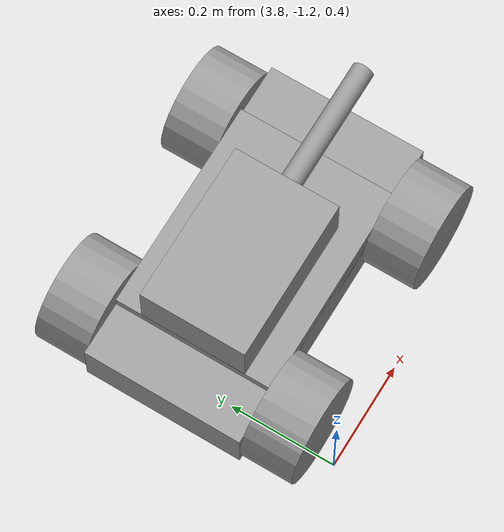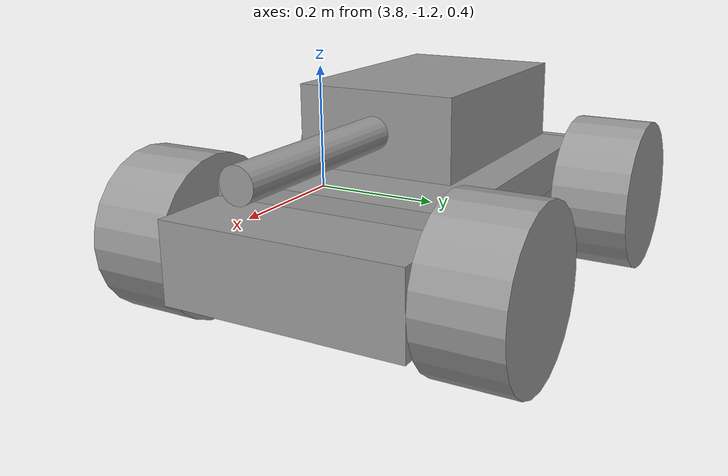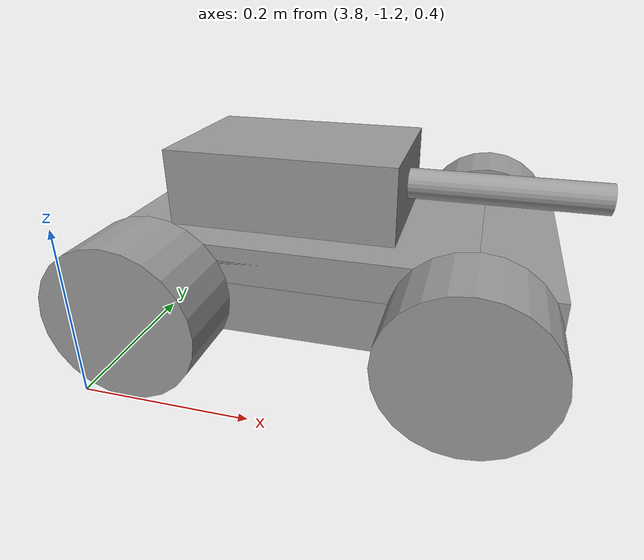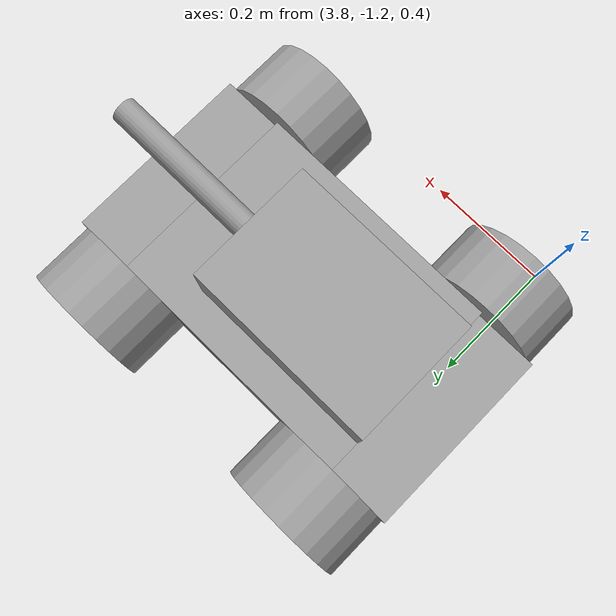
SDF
<?xml version='1.0'?>
<sdf version='1.6'>
  <model name='TankBot'>
    <link name='link_0'>
      <pose frame=''>4.02291 -0.912872 0.464375 0 -0 0</pose>
      <inertial>
        <mass>1</mass>
        <inertia>
          <ixx>0.166667</ixx>
          <ixy>0</ixy>
          <ixz>0</ixz>
          <iyy>0.166667</iyy>
          <iyz>0</iyz>
          <izz>0.166667</izz>
        </inertia>
        <pose frame=''>0 0 0 0 -0 0</pose>
      </inertial>
      <gravity>1</gravity>
      <self_collide>0</self_collide>
      <kinematic>0</kinematic>
      <visual name='visual'>
        <pose frame=''>0 0 0 0 -0 0</pose>
        <geometry>
          <box>
            <size>0.6 0.3 0.1</size>
          </box>
        </geometry>
        <material>
          <lighting>1</lighting>
          <script>
            <uri>file://media/materials/scripts/gazebo.material</uri>
            <name>Gazebo/Grey</name>
          </script>
          <shader type='pixel'>
            <normal_map>__default__</normal_map>
          </shader>
          <ambient>0.3 0.3 0.3 1</ambient>
          <diffuse>0.7 0.7 0.7 1</diffuse>
          <specular>0.01 0.01 0.01 1</specular>
          <emissive>0 0 0 1</emissive>
        </material>
        <transparency>0</transparency>
        <cast_shadows>1</cast_shadows>
      </visual>
      <collision name='collision'>
        <laser_retro>0</laser_retro>
        <max_contacts>10</max_contacts>
        <pose frame=''>0 0 0 0 -0 0</pose>
        <geometry>
          <box>
            <size>0.6 0.3 0.1</size>
          </box>
        </geometry>
        <surface>
          <friction>
            <ode>
              <mu>1</mu>
              <mu2>1</mu2>
              <fdir1>0 0 0</fdir1>
              <slip1>0</slip1>
              <slip2>0</slip2>
            </ode>
            <torsional>
              <coefficient>1</coefficient>
              <patch_radius>0</patch_radius>
              <surface_radius>0</surface_radius>
              <use_patch_radius>1</use_patch_radius>
              <ode>
                <slip>0</slip>
              </ode>
            </torsional>
          </friction>
          <bounce>
            <restitution_coefficient>0</restitution_coefficient>
            <threshold>1e+06</threshold>
          </bounce>
          <contact>
            <collide_without_contact>0</collide_without_contact>
            <collide_without_contact_bitmask>1</collide_without_contact_bitmask>
            <collide_bitmask>1</collide_bitmask>
            <ode>
              <soft_cfm>0</soft_cfm>
              <soft_erp>0.2</soft_erp>
              <kp>1e+13</kp>
              <kd>1</kd>
              <max_vel>0.01</max_vel>
              <min_depth>0</min_depth>
            </ode>
            <bullet>
              <split_impulse>1</split_impulse>
              <split_impulse_penetration_threshold>-0.01</split_impulse_penetration_threshold>
              <soft_cfm>0</soft_cfm>
              <soft_erp>0.2</soft_erp>
              <kp>1e+13</kp>
              <kd>1</kd>
            </bullet>
          </contact>
        </surface>
      </collision>
    </link>
    <link name='link_1_clone'>
      <pose frame=''>3.82291 -1.11288 0.464375 1.5707 -0 0</pose>
      <inertial>
        <mass>1</mass>
        <inertia>
          <ixx>0.145833</ixx>
          <ixy>0</ixy>
          <ixz>0</ixz>
          <iyy>0.145833</iyy>
          <iyz>0</iyz>
          <izz>0.125</izz>
        </inertia>
        <pose frame=''>0 0 0 0 -0 0</pose>
      </inertial>
      <self_collide>0</self_collide>
      <kinematic>0</kinematic>
      <visual name='visual'>
        <pose frame=''>0 0 0 0 -0 0</pose>
        <geometry>
          <cylinder>
            <radius>0.1</radius>
            <length>0.1</length>
          </cylinder>
        </geometry>
        <material>
          <lighting>1</lighting>
          <script>
            <uri>file://media/materials/scripts/gazebo.material</uri>
            <name>Gazebo/Grey</name>
          </script>
          <shader type='pixel'>
            <normal_map>__default__</normal_map>
          </shader>
          <ambient>0.3 0.3 0.3 1</ambient>
          <diffuse>0.7 0.7 0.7 1</diffuse>
          <specular>0.01 0.01 0.01 1</specular>
          <emissive>0 0 0 1</emissive>
        </material>
        <transparency>0</transparency>
        <cast_shadows>1</cast_shadows>
      </visual>
      <collision name='collision'>
        <laser_retro>0</laser_retro>
        <max_contacts>10</max_contacts>
        <pose frame=''>0 0 0 0 -0 0</pose>
        <geometry>
          <cylinder>
            <radius>0.1</radius>
            <length>0.1</length>
          </cylinder>
        </geometry>
        <surface>
          <friction>
            <ode>
              <mu>1</mu>
              <mu2>1</mu2>
              <fdir1>0 0 0</fdir1>
              <slip1>0</slip1>
              <slip2>0</slip2>
            </ode>
            <torsional>
              <coefficient>1</coefficient>
              <patch_radius>0</patch_radius>
              <surface_radius>0</surface_radius>
              <use_patch_radius>1</use_patch_radius>
              <ode>
                <slip>0</slip>
              </ode>
            </torsional>
          </friction>
          <bounce>
            <restitution_coefficient>0</restitution_coefficient>
            <threshold>1e+06</threshold>
          </bounce>
          <contact>
            <collide_without_contact>0</collide_without_contact>
            <collide_without_contact_bitmask>1</collide_without_contact_bitmask>
            <collide_bitmask>1</collide_bitmask>
            <ode>
              <soft_cfm>0</soft_cfm>
              <soft_erp>0.2</soft_erp>
              <kp>1e+13</kp>
              <kd>1</kd>
              <max_vel>0.01</max_vel>
              <min_depth>0</min_depth>
            </ode>
            <bullet>
              <split_impulse>1</split_impulse>
              <split_impulse_penetration_threshold>-0.01</split_impulse_penetration_threshold>
              <soft_cfm>0</soft_cfm>
              <soft_erp>0.2</soft_erp>
              <kp>1e+13</kp>
              <kd>1</kd>
            </bullet>
          </contact>
        </surface>
      </collision>
    </link>
    <link name='link_1_clone_0'>
      <pose frame=''>4.22291 -1.11288 0.464375 1.5707 -0 0</pose>
      <inertial>
        <mass>1</mass>
        <inertia>
          <ixx>0.145833</ixx>
          <ixy>0</ixy>
          <ixz>0</ixz>
          <iyy>0.145833</iyy>
          <iyz>0</iyz>
          <izz>0.125</izz>
        </inertia>
        <pose frame=''>0 0 0 0 -0 0</pose>
      </inertial>
      <self_collide>0</self_collide>
      <kinematic>0</kinematic>
      <visual name='visual'>
        <pose frame=''>0 0 0 0 -0 0</pose>
        <geometry>
          <cylinder>
            <radius>0.1</radius>
            <length>0.1</length>
          </cylinder>
        </geometry>
        <material>
          <lighting>1</lighting>
          <script>
            <uri>file://media/materials/scripts/gazebo.material</uri>
            <name>Gazebo/Grey</name>
          </script>
          <shader type='pixel'>
            <normal_map>__default__</normal_map>
          </shader>
          <ambient>0.3 0.3 0.3 1</ambient>
          <diffuse>0.7 0.7 0.7 1</diffuse>
          <specular>0.01 0.01 0.01 1</specular>
          <emissive>0 0 0 1</emissive>
        </material>
        <transparency>0</transparency>
        <cast_shadows>1</cast_shadows>
      </visual>
      <collision name='collision'>
        <laser_retro>0</laser_retro>
        <max_contacts>10</max_contacts>
        <pose frame=''>0 0 0 0 -0 0</pose>
        <geometry>
          <cylinder>
            <radius>0.1</radius>
            <length>0.1</length>
          </cylinder>
        </geometry>
        <surface>
          <friction>
            <ode>
              <mu>1</mu>
              <mu2>1</mu2>
              <fdir1>0 0 0</fdir1>
              <slip1>0</slip1>
              <slip2>0</slip2>
            </ode>
            <torsional>
              <coefficient>1</coefficient>
              <patch_radius>0</patch_radius>
              <surface_radius>0</surface_radius>
              <use_patch_radius>1</use_patch_radius>
              <ode>
                <slip>0</slip>
              </ode>
            </torsional>
          </friction>
          <bounce>
            <restitution_coefficient>0</restitution_coefficient>
            <threshold>1e+06</threshold>
          </bounce>
          <contact>
            <collide_without_contact>0</collide_without_contact>
            <collide_without_contact_bitmask>1</collide_without_contact_bitmask>
            <collide_bitmask>1</collide_bitmask>
            <ode>
              <soft_cfm>0</soft_cfm>
              <soft_erp>0.2</soft_erp>
              <kp>1e+13</kp>
              <kd>1</kd>
              <max_vel>0.01</max_vel>
              <min_depth>0</min_depth>
            </ode>
            <bullet>
              <split_impulse>1</split_impulse>
              <split_impulse_penetration_threshold>-0.01</split_impulse_penetration_threshold>
              <soft_cfm>0</soft_cfm>
              <soft_erp>0.2</soft_erp>
              <kp>1e+13</kp>
              <kd>1</kd>
            </bullet>
          </contact>
        </surface>
      </collision>
    </link>
    <link name='link_1_clone_0_clone'>
      <pose frame=''>3.82291 -0.712862 0.464375 1.5707 -0 0</pose>
      <inertial>
        <mass>1</mass>
        <inertia>
          <ixx>0.145833</ixx>
          <ixy>0</ixy>
          <ixz>0</ixz>
          <iyy>0.145833</iyy>
          <iyz>0</iyz>
          <izz>0.125</izz>
        </inertia>
        <pose frame=''>0 0 0 0 -0 0</pose>
      </inertial>
      <self_collide>0</self_collide>
      <kinematic>0</kinematic>
      <visual name='visual'>
        <pose frame=''>0 0 0 0 -0 0</pose>
        <geometry>
          <cylinder>
            <radius>0.1</radius>
            <length>0.1</length>
          </cylinder>
        </geometry>
        <material>
          <lighting>1</lighting>
          <script>
            <uri>file://media/materials/scripts/gazebo.material</uri>
            <name>Gazebo/Grey</name>
          </script>
          <shader type='pixel'>
            <normal_map>__default__</normal_map>
          </shader>
          <ambient>0.3 0.3 0.3 1</ambient>
          <diffuse>0.7 0.7 0.7 1</diffuse>
          <specular>0.01 0.01 0.01 1</specular>
          <emissive>0 0 0 1</emissive>
        </material>
        <transparency>0</transparency>
        <cast_shadows>1</cast_shadows>
      </visual>
      <collision name='collision'>
        <laser_retro>0</laser_retro>
        <max_contacts>10</max_contacts>
        <pose frame=''>0 0 0 0 -0 0</pose>
        <geometry>
          <cylinder>
            <radius>0.1</radius>
            <length>0.1</length>
          </cylinder>
        </geometry>
        <surface>
          <friction>
            <ode>
              <mu>1</mu>
              <mu2>1</mu2>
              <fdir1>0 0 0</fdir1>
              <slip1>0</slip1>
              <slip2>0</slip2>
            </ode>
            <torsional>
              <coefficient>1</coefficient>
              <patch_radius>0</patch_radius>
              <surface_radius>0</surface_radius>
              <use_patch_radius>1</use_patch_radius>
              <ode>
                <slip>0</slip>
              </ode>
            </torsional>
          </friction>
          <bounce>
            <restitution_coefficient>0</restitution_coefficient>
            <threshold>1e+06</threshold>
          </bounce>
          <contact>
            <collide_without_contact>0</collide_without_contact>
            <collide_without_contact_bitmask>1</collide_without_contact_bitmask>
            <collide_bitmask>1</collide_bitmask>
            <ode>
              <soft_cfm>0</soft_cfm>
              <soft_erp>0.2</soft_erp>
              <kp>1e+13</kp>
              <kd>1</kd>
              <max_vel>0.01</max_vel>
              <min_depth>0</min_depth>
            </ode>
            <bullet>
              <split_impulse>1</split_impulse>
              <split_impulse_penetration_threshold>-0.01</split_impulse_penetration_threshold>
              <soft_cfm>0</soft_cfm>
              <soft_erp>0.2</soft_erp>
              <kp>1e+13</kp>
              <kd>1</kd>
            </bullet>
          </contact>
        </surface>
      </collision>
    </link>
    <link name='link_1_clone_clone'>
      <pose frame=''>4.22291 -0.712862 0.464375 1.5707 -0 0</pose>
      <inertial>
        <mass>1</mass>
        <inertia>
          <ixx>0.145833</ixx>
          <ixy>0</ixy>
          <ixz>0</ixz>
          <iyy>0.145833</iyy>
          <iyz>0</iyz>
          <izz>0.125</izz>
        </inertia>
        <pose frame=''>0 0 0 0 -0 0</pose>
      </inertial>
      <self_collide>0</self_collide>
      <kinematic>0</kinematic>
      <visual name='visual'>
        <pose frame=''>0 0 0 0 -0 0</pose>
        <geometry>
          <cylinder>
            <radius>0.1</radius>
            <length>0.1</length>
          </cylinder>
        </geometry>
        <material>
          <lighting>1</lighting>
          <script>
            <uri>file://media/materials/scripts/gazebo.material</uri>
            <name>Gazebo/Grey</name>
          </script>
          <shader type='pixel'>
            <normal_map>__default__</normal_map>
          </shader>
          <ambient>0.3 0.3 0.3 1</ambient>
          <diffuse>0.7 0.7 0.7 1</diffuse>
          <specular>0.01 0.01 0.01 1</specular>
          <emissive>0 0 0 1</emissive>
        </material>
        <transparency>0</transparency>
        <cast_shadows>1</cast_shadows>
      </visual>
      <collision name='collision'>
        <laser_retro>0</laser_retro>
        <max_contacts>10</max_contacts>
        <pose frame=''>0 0 0 0 -0 0</pose>
        <geometry>
          <cylinder>
            <radius>0.1</radius>
            <length>0.1</length>
          </cylinder>
        </geometry>
        <surface>
          <friction>
            <ode>
              <mu>1</mu>
              <mu2>1</mu2>
              <fdir1>0 0 0</fdir1>
              <slip1>0</slip1>
              <slip2>0</slip2>
            </ode>
            <torsional>
              <coefficient>1</coefficient>
              <patch_radius>0</patch_radius>
              <surface_radius>0</surface_radius>
              <use_patch_radius>1</use_patch_radius>
              <ode>
                <slip>0</slip>
              </ode>
            </torsional>
          </friction>
          <bounce>
            <restitution_coefficient>0</restitution_coefficient>
            <threshold>1e+06</threshold>
          </bounce>
          <contact>
            <collide_without_contact>0</collide_without_contact>
            <collide_without_contact_bitmask>1</collide_without_contact_bitmask>
            <collide_bitmask>1</collide_bitmask>
            <ode>
              <soft_cfm>0</soft_cfm>
              <soft_erp>0.2</soft_erp>
              <kp>1e+13</kp>
              <kd>1</kd>
              <max_vel>0.01</max_vel>
              <min_depth>0</min_depth>
            </ode>
            <bullet>
              <split_impulse>1</split_impulse>
              <split_impulse_penetration_threshold>-0.01</split_impulse_penetration_threshold>
              <soft_cfm>0</soft_cfm>
              <soft_erp>0.2</soft_erp>
              <kp>1e+13</kp>
              <kd>1</kd>
            </bullet>
          </contact>
        </surface>
      </collision>
    </link>
    <link name='link_2_clone'>
      <pose frame=''>4.02291 -0.912872 0.509375 0 -0 0</pose>
      <inertial>
        <mass>1</mass>
        <inertia>
          <ixx>0.166667</ixx>
          <ixy>0</ixy>
          <ixz>0</ixz>
          <iyy>0.166667</iyy>
          <iyz>0</iyz>
          <izz>0.166667</izz>
        </inertia>
        <pose frame=''>0 0 0 0 -0 0</pose>
      </inertial>
      <self_collide>0</self_collide>
      <kinematic>0</kinematic>
      <visual name='visual'>
        <pose frame=''>0 0 0 0 -0 0</pose>
        <geometry>
          <box>
            <size>0.4 0.3 0.05</size>
          </box>
        </geometry>
        <material>
          <lighting>1</lighting>
          <script>
            <uri>file://media/materials/scripts/gazebo.material</uri>
            <name>Gazebo/Grey</name>
          </script>
          <shader type='pixel'>
            <normal_map>__default__</normal_map>
          </shader>
          <ambient>0.3 0.3 0.3 1</ambient>
          <diffuse>0.7 0.7 0.7 1</diffuse>
          <specular>0.01 0.01 0.01 1</specular>
          <emissive>0 0 0 1</emissive>
        </material>
        <transparency>0</transparency>
        <cast_shadows>1</cast_shadows>
      </visual>
      <collision name='collision'>
        <laser_retro>0</laser_retro>
        <max_contacts>10</max_contacts>
        <pose frame=''>0 0 0 0 -0 0</pose>
        <geometry>
          <box>
            <size>0.4 0.3 0.05</size>
          </box>
        </geometry>
        <surface>
          <friction>
            <ode>
              <mu>1</mu>
              <mu2>1</mu2>
              <fdir1>0 0 0</fdir1>
              <slip1>0</slip1>
              <slip2>0</slip2>
            </ode>
            <torsional>
              <coefficient>1</coefficient>
              <patch_radius>0</patch_radius>
              <surface_radius>0</surface_radius>
              <use_patch_radius>1</use_patch_radius>
              <ode>
                <slip>0</slip>
              </ode>
            </torsional>
          </friction>
          <bounce>
            <restitution_coefficient>0</restitution_coefficient>
            <threshold>1e+06</threshold>
          </bounce>
          <contact>
            <collide_without_contact>0</collide_without_contact>
            <collide_without_contact_bitmask>1</collide_without_contact_bitmask>
            <collide_bitmask>1</collide_bitmask>
            <ode>
              <soft_cfm>0</soft_cfm>
              <soft_erp>0.2</soft_erp>
              <kp>1e+13</kp>
              <kd>1</kd>
              <max_vel>0.01</max_vel>
              <min_depth>0</min_depth>
            </ode>
            <bullet>
              <split_impulse>1</split_impulse>
              <split_impulse_penetration_threshold>-0.01</split_impulse_penetration_threshold>
              <soft_cfm>0</soft_cfm>
              <soft_erp>0.2</soft_erp>
              <kp>1e+13</kp>
              <kd>1</kd>
            </bullet>
          </contact>
        </surface>
      </collision>
    </link>
    <link name='link_3_clone'>
      <pose frame=''>3.97291 -0.912872 0.584375 0 -0 0</pose>
      <inertial>
        <mass>1</mass>
        <inertia>
          <ixx>0.166667</ixx>
          <ixy>0</ixy>
          <ixz>0</ixz>
          <iyy>0.166667</iyy>
          <iyz>0</iyz>
          <izz>0.166667</izz>
        </inertia>
        <pose frame=''>0 0 0 0 -0 0</pose>
      </inertial>
      <self_collide>0</self_collide>
      <kinematic>0</kinematic>
      <visual name='visual'>
        <pose frame=''>0 0 0 0 -0 0</pose>
        <geometry>
          <box>
            <size>0.3 0.2 0.1</size>
          </box>
        </geometry>
        <material>
          <lighting>1</lighting>
          <script>
            <uri>file://media/materials/scripts/gazebo.material</uri>
            <name>Gazebo/Grey</name>
          </script>
          <shader type='pixel'>
            <normal_map>__default__</normal_map>
          </shader>
          <ambient>0.3 0.3 0.3 1</ambient>
          <diffuse>0.7 0.7 0.7 1</diffuse>
          <specular>0.01 0.01 0.01 1</specular>
          <emissive>0 0 0 1</emissive>
        </material>
        <transparency>0</transparency>
        <cast_shadows>1</cast_shadows>
      </visual>
      <collision name='collision'>
        <laser_retro>0</laser_retro>
        <max_contacts>10</max_contacts>
        <pose frame=''>0 0 0 0 -0 0</pose>
        <geometry>
          <box>
            <size>0.3 0.2 0.1</size>
          </box>
        </geometry>
        <surface>
          <friction>
            <ode>
              <mu>1</mu>
              <mu2>1</mu2>
              <fdir1>0 0 0</fdir1>
              <slip1>0</slip1>
              <slip2>0</slip2>
            </ode>
            <torsional>
              <coefficient>1</coefficient>
              <patch_radius>0</patch_radius>
              <surface_radius>0</surface_radius>
              <use_patch_radius>1</use_patch_radius>
              <ode>
                <slip>0</slip>
              </ode>
            </torsional>
          </friction>
          <bounce>
            <restitution_coefficient>0</restitution_coefficient>
            <threshold>1e+06</threshold>
          </bounce>
          <contact>
            <collide_without_contact>0</collide_without_contact>
            <collide_without_contact_bitmask>1</collide_without_contact_bitmask>
            <collide_bitmask>1</collide_bitmask>
            <ode>
              <soft_cfm>0</soft_cfm>
              <soft_erp>0.2</soft_erp>
              <kp>1e+13</kp>
              <kd>1</kd>
              <max_vel>0.01</max_vel>
              <min_depth>0</min_depth>
            </ode>
            <bullet>
              <split_impulse>1</split_impulse>
              <split_impulse_penetration_threshold>-0.01</split_impulse_penetration_threshold>
              <soft_cfm>0</soft_cfm>
              <soft_erp>0.2</soft_erp>
              <kp>1e+13</kp>
              <kd>1</kd>
            </bullet>
          </contact>
        </surface>
      </collision>
    </link>
    <link name='link_4_clone'>
      <pose frame=''>4.24792 -0.912872 0.584375 1.5707 0 1.5707</pose>
      <inertial>
        <mass>1</mass>
        <inertia>
          <ixx>0.145833</ixx>
          <ixy>0</ixy>
          <ixz>0</ixz>
          <iyy>0.145833</iyy>
          <iyz>0</iyz>
          <izz>0.125</izz>
        </inertia>
        <pose frame=''>0 0 0 0 -0 0</pose>
      </inertial>
      <self_collide>0</self_collide>
      <kinematic>0</kinematic>
      <gravity>1</gravity>
      <visual name='visual'>
        <pose frame=''>0 0 0 0 -0 0</pose>
        <geometry>
          <cylinder>
            <radius>0.02</radius>
            <length>0.25</length>
          </cylinder>
        </geometry>
        <material>
          <lighting>1</lighting>
          <script>
            <uri>file://media/materials/scripts/gazebo.material</uri>
            <name>Gazebo/Grey</name>
          </script>
          <shader type='pixel'>
            <normal_map>__default__</normal_map>
          </shader>
          <ambient>0.3 0.3 0.3 1</ambient>
          <diffuse>0.7 0.7 0.7 1</diffuse>
          <specular>0.01 0.01 0.01 1</specular>
          <emissive>0 0 0 1</emissive>
        </material>
        <transparency>0</transparency>
        <cast_shadows>1</cast_shadows>
      </visual>
      <collision name='collision'>
        <laser_retro>0</laser_retro>
        <max_contacts>10</max_contacts>
        <pose frame=''>0 0 0 0 -0 0</pose>
        <geometry>
          <cylinder>
            <radius>0.02</radius>
            <length>0.25</length>
          </cylinder>
        </geometry>
        <surface>
          <friction>
            <ode>
              <mu>1</mu>
              <mu2>1</mu2>
              <fdir1>0 0 0</fdir1>
              <slip1>0</slip1>
              <slip2>0</slip2>
            </ode>
            <torsional>
              <coefficient>1</coefficient>
              <patch_radius>0</patch_radius>
              <surface_radius>0</surface_radius>
              <use_patch_radius>1</use_patch_radius>
              <ode>
                <slip>0</slip>
              </ode>
            </torsional>
          </friction>
          <bounce>
            <restitution_coefficient>0</restitution_coefficient>
            <threshold>1e+06</threshold>
          </bounce>
          <contact>
            <collide_without_contact>0</collide_without_contact>
            <collide_without_contact_bitmask>1</collide_without_contact_bitmask>
            <collide_bitmask>1</collide_bitmask>
            <ode>
              <soft_cfm>0</soft_cfm>
              <soft_erp>0.2</soft_erp>
              <kp>1e+13</kp>
              <kd>1</kd>
              <max_vel>0.01</max_vel>
              <min_depth>0</min_depth>
            </ode>
            <bullet>
              <split_impulse>1</split_impulse>
              <split_impulse_penetration_threshold>-0.01</split_impulse_penetration_threshold>
              <soft_cfm>0</soft_cfm>
              <soft_erp>0.2</soft_erp>
              <kp>1e+13</kp>
              <kd>1</kd>
            </bullet>
          </contact>
        </surface>
      </collision>
    </link>
    <joint name='link_0_JOINT_2' type='revolute'>
      <parent>link_0</parent>
      <child>link_1_clone_clone</child>
      <pose frame=''>0 0 0 0 -0 0</pose>
      <axis>
        <xyz>0 0 1</xyz>
        <use_parent_model_frame>0</use_parent_model_frame>
        <limit>
          <lower>-1.79769e+308</lower>
          <upper>1.79769e+308</upper>
          <effort>-1</effort>
          <velocity>-1</velocity>
        </limit>
        <dynamics>
          <spring_reference>0</spring_reference>
          <spring_stiffness>0</spring_stiffness>
          <damping>0</damping>
        </dynamics>
      </axis>
      <physics>
        <ode>
          <limit>
            <cfm>0</cfm>
            <erp>0.2</erp>
          </limit>
          <suspension>
            <cfm>0</cfm>
            <erp>0.2</erp>
          </suspension>
        </ode>
      </physics>
    </joint>
    <joint name='link_0_JOINT_3' type='revolute'>
      <parent>link_0</parent>
      <child>link_1_clone_0</child>
      <pose frame=''>0 0 0 0 -0 0</pose>
      <axis>
        <xyz>0 0 1</xyz>
        <use_parent_model_frame>0</use_parent_model_frame>
        <limit>
          <lower>-1.79769e+308</lower>
          <upper>1.79769e+308</upper>
          <effort>-1</effort>
          <velocity>-1</velocity>
        </limit>
        <dynamics>
          <spring_reference>0</spring_reference>
          <spring_stiffness>0</spring_stiffness>
          <damping>0</damping>
        </dynamics>
      </axis>
      <physics>
        <ode>
          <limit>
            <cfm>0</cfm>
            <erp>0.2</erp>
          </limit>
          <suspension>
            <cfm>0</cfm>
            <erp>0.2</erp>
          </suspension>
        </ode>
      </physics>
    </joint>
    <joint name='link_0_JOINT_4' type='revolute'>
      <parent>link_0</parent>
      <child>link_1_clone_0_clone</child>
      <pose frame=''>0 0 0 0 -0 0</pose>
      <axis>
        <xyz>0 0 1</xyz>
        <use_parent_model_frame>0</use_parent_model_frame>
        <limit>
          <lower>-1.79769e+308</lower>
          <upper>1.79769e+308</upper>
          <effort>-1</effort>
          <velocity>-1</velocity>
        </limit>
        <dynamics>
          <spring_reference>0</spring_reference>
          <spring_stiffness>0</spring_stiffness>
          <damping>0</damping>
        </dynamics>
      </axis>
      <physics>
        <ode>
          <limit>
            <cfm>0</cfm>
            <erp>0.2</erp>
          </limit>
          <suspension>
            <cfm>0</cfm>
            <erp>0.2</erp>
          </suspension>
        </ode>
      </physics>
    </joint>
    <joint name='link_0_JOINT_5' type='revolute'>
      <parent>link_0</parent>
      <child>link_1_clone</child>
      <pose frame=''>0 0 0 0 -0 0</pose>
      <axis>
        <xyz>0 0 1</xyz>
        <use_parent_model_frame>0</use_parent_model_frame>
        <limit>
          <lower>-1.79769e+308</lower>
          <upper>1.79769e+308</upper>
          <effort>-1</effort>
          <velocity>-1</velocity>
        </limit>
        <dynamics>
          <spring_reference>0</spring_reference>
          <spring_stiffness>0</spring_stiffness>
          <damping>0</damping>
        </dynamics>
      </axis>
      <physics>
        <ode>
          <limit>
            <cfm>0</cfm>
            <erp>0.2</erp>
          </limit>
          <suspension>
            <cfm>0</cfm>
            <erp>0.2</erp>
          </suspension>
        </ode>
      </physics>
    </joint>
    <joint name='link_0_JOINT_7' type='fixed'>
      <parent>link_0</parent>
      <child>link_2_clone</child>
      <pose frame=''>0 0 0 0 -0 0</pose>
      <physics>
        <ode>
          <limit>
            <cfm>0</cfm>
            <erp>0.2</erp>
          </limit>
          <suspension>
            <cfm>0</cfm>
            <erp>0.2</erp>
          </suspension>
        </ode>
      </physics>
    </joint>
    <joint name='link_2_clone_JOINT_9' type='fixed'>
      <parent>link_2_clone</parent>
      <child>link_3_clone</child>
      <pose frame=''>0 0 0 0 -0 0</pose>
      <physics>
        <ode>
          <limit>
            <cfm>0</cfm>
            <erp>0.2</erp>
          </limit>
          <suspension>
            <cfm>0</cfm>
            <erp>0.2</erp>
          </suspension>
        </ode>
      </physics>
    </joint>
    <joint name='link_3_clone_JOINT_11' type='fixed'>
      <parent>link_3_clone</parent>
      <child>link_4_clone</child>
      <pose frame=''>0 0 0 0 -0 0</pose>
      <physics>
        <ode>
          <limit>
            <cfm>0</cfm>
            <erp>0.2</erp>
          </limit>
          <suspension>
            <cfm>0</cfm>
            <erp>0.2</erp>
          </suspension>
        </ode>
      </physics>
    </joint>
    <static>0</static>
    <allow_auto_disable>1</allow_auto_disable>
  </model>
</sdf>
